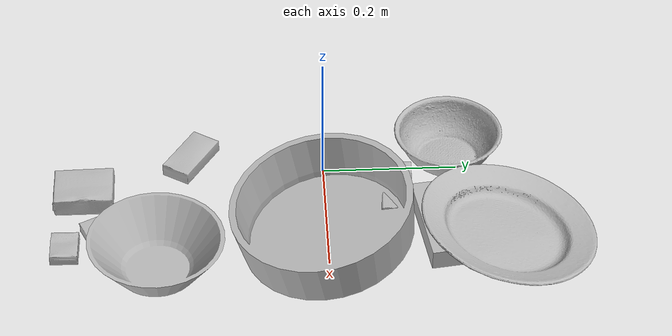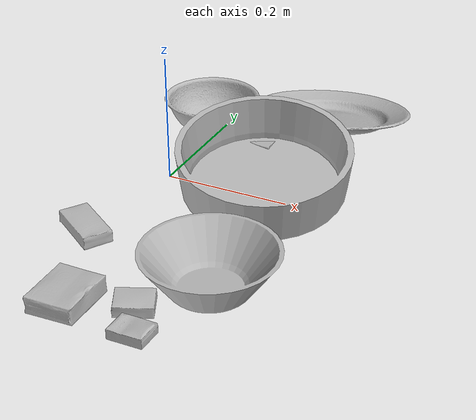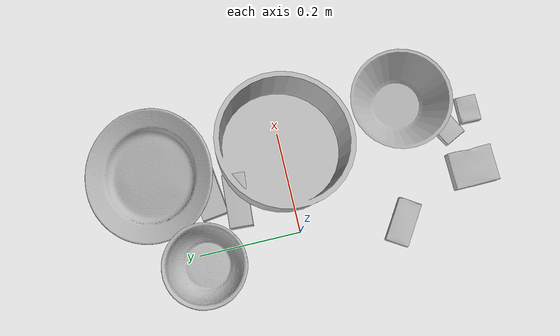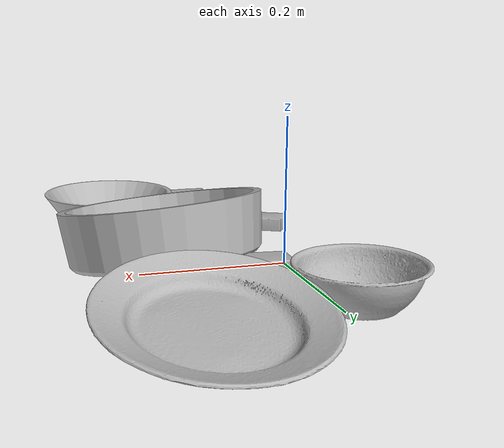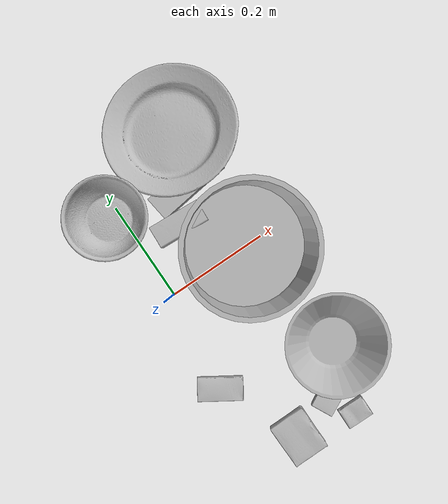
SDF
<sdf version="1.4">
  <world name="default">
    <light name="light1" type="point">
      <pose>0 0 1 0 0 0</pose>
      <diffuse>3 3 3 1</diffuse>
      <specular>3 3 3 1</specular>
    </light>
    <light name="light2" type="point">
      <pose>0 0.5 2 0 0 0</pose>
      <diffuse>1 1 1 1</diffuse>
      <specular>1 1 1 1</specular>
    </light>
    <light name="light3" type="point">
      <pose>0 0.5 2 0 0 0</pose>
      <diffuse>3 3 3 1</diffuse>
      <specular>3 3 3 1</specular>
    </light>
    <scene>
      <ambient>0.7 0.7 0.7</ambient>
    </scene>
    <model name="box1">
      <link name="link_box1">
        <collision name="default">
          <geometry>
            <mesh>
              <uri>model://jenga/collision_meshes/collision.obj</uri>
              <scale>1.0 1.0 1.0</scale>
            </mesh>
          </geometry>
          <surface>
            <friction>
              <ode>
                <mu>0.5</mu>
                <mu2>0.5</mu2>
              </ode>
            </friction>
          <contact>
        <ode>
            <max_vel>0</max_vel>
            <min_depth>0.0001</min_depth>
            <kp>1e8</kp>
        </ode>
    </contact></surface>
        </collision>
        <visual name="default">
          <geometry>
            <mesh>
              <uri>model://jenga/visual_meshes/visual.dae</uri>
              <scale>1.0 1.0 1.0</scale>
            </mesh>
          </geometry>
        </visual>
        <inertial>
          <mass>0.24226053059101105</mass>
          <pose>-2.502855807051674e-07 -0.0001025000965455547 -4.092339804628864e-05 0.0 -7.34215461761844e-07 0.0</pose>
          <inertia>
            <ixx>6.703936e-05</ixx>
            <iyy>0.0004542569</iyy>
            <izz>0.00048495785</izz>
            <ixy>0</ixy>
            <ixz>0</ixz>
            <iyz>0</iyz>
          </inertia>
        </inertial>
      </link>
      <pose>0.13977506756782532 0.16134831309318542 0.01499998103827238 -1.5900684364967994e-07 -1.8336262935022346e-07 0.13187596357569406</pose>
    </model>
    <model name="box11">
      <link name="link_box11">
        <collision name="default">
          <geometry>
            <mesh>
              <uri>model://sugar_box/collision_meshes/collision.obj</uri>
              <scale>0.5 0.5 0.5</scale>
            </mesh>
          </geometry>
          <surface>
            <friction>
              <ode>
                <mu>0.5</mu>
                <mu2>0.5</mu2>
              </ode>
            </friction>
          <contact>
        <ode>
            <max_vel>0</max_vel>
            <min_depth>0.0001</min_depth>
            <kp>1e8</kp>
        </ode>
    </contact></surface>
        </collision>
        <visual name="default">
          <geometry>
            <mesh>
              <uri>model://sugar_box/visual_meshes/visual.dae</uri>
              <scale>0.5 0.5 0.5</scale>
            </mesh>
          </geometry>
        </visual>
        <inertial>
          <mass>0.06204606965184212</mass>
          <pose>0.0005171863595023751 1.9245549992774613e-05 -0.00018182402709499002 -0.0004046263588767038 0.0010506634057764815 0.0026153785560837986</pose>
          <inertia>
            <ixx>1.2924152e-05</ixx>
            <iyy>4.1773517e-05</iyy>
            <izz>5.0007893e-05</izz>
            <ixy>0</ixy>
            <ixz>0</ixz>
            <iyz>0</iyz>
          </inertia>
        </inertial>
      </link>
      <pose>-0.026681318879127502 -0.1975691020488739 0.011399305425584316 0.0007755251095430781 -0.023433289260363227 2.564435177986477</pose>
    </model>
    <model name="box2">
      <link name="link_box2">
        <collision name="default">
          <geometry>
            <mesh>
              <uri>model://gelatin_box/collision_meshes/collision.obj</uri>
              <scale>1.0 1.0 1.0</scale>
            </mesh>
          </geometry>
          <surface>
            <friction>
              <ode>
                <mu>0.5</mu>
                <mu2>0.5</mu2>
              </ode>
            </friction>
          <contact>
        <ode>
            <max_vel>0</max_vel>
            <min_depth>0.0001</min_depth>
            <kp>1e8</kp>
        </ode>
    </contact></surface>
        </collision>
        <visual name="default">
          <geometry>
            <mesh>
              <uri>model://gelatin_box/visual_meshes/visual.dae</uri>
              <scale>1.0 1.0 1.0</scale>
            </mesh>
          </geometry>
        </visual>
        <inertial>
          <mass>0.13706544041633606</mass>
          <pose>0.000431961816502735 0.00011156871187267825 -0.0003640321083366871 -0.0010503719975702072 -0.0047558196187974565 0.01644056506069309</pose>
          <inertia>
            <ixx>9.675702e-05</ixx>
            <iyy>6.911303e-05</iyy>
            <izz>0.00014728573</izz>
            <ixy>0</ixy>
            <ixz>0</ixz>
            <iyz>0</iyz>
          </inertia>
        </inertial>
      </link>
      <pose>0.045686185359954834 -0.3552705943584442 0.015168312005698681 0.005597092803846328 -0.007304179788195795 0.00029324332979810446</pose>
    </model>
    <model name="box21">
      <link name="link_box21">
        <collision name="default">
          <geometry>
            <mesh>
              <uri>model://pudding_box/collision_meshes/collision.obj</uri>
              <scale>0.5 0.5 0.5</scale>
            </mesh>
          </geometry>
          <surface>
            <friction>
              <ode>
                <mu>0.5</mu>
                <mu2>0.5</mu2>
              </ode>
            </friction>
          <contact>
        <ode>
            <max_vel>0</max_vel>
            <min_depth>0.0001</min_depth>
            <kp>1e8</kp>
        </ode>
    </contact></surface>
        </collision>
        <visual name="default">
          <geometry>
            <mesh>
              <uri>model://pudding_box/visual_meshes/visual.dae</uri>
              <scale>0.5 0.5 0.5</scale>
            </mesh>
          </geometry>
        </visual>
        <inertial>
          <mass>0.041178666055202484</mass>
          <pose>0.00024474109522998333 0.00040339428232982755 -0.00025944141088984907 0.005213101335872514 -0.006603799630434185 0.020079819569992066</pose>
          <inertia>
            <ixx>1.163759e-05</ixx>
            <iyy>7.8298535e-06</iyy>
            <izz>1.7185945e-05</izz>
            <ixy>0</ixy>
            <ixz>0</ixz>
            <iyz>0</iyz>
          </inertia>
        </inertial>
      </link>
      <pose>0.13330119848251343 -0.32762616872787476 0.009862901642918587 0.02234750412947816 -0.011392185745284856 2.0230709119189476</pose>
    </model>
    <model name="box3">
      <link name="link_box3">
        <collision name="default">
          <geometry>
            <mesh>
              <uri>model://cracker_box/collision_meshes/collision.obj</uri>
              <scale>0.25 0.25 0.25</scale>
            </mesh>
          </geometry>
          <surface>
            <friction>
              <ode>
                <mu>0.5</mu>
                <mu2>0.5</mu2>
              </ode>
            </friction>
          <contact>
        <ode>
            <max_vel>0</max_vel>
            <min_depth>0.0001</min_depth>
            <kp>1e8</kp>
        </ode>
    </contact></surface>
        </collision>
        <visual name="default">
          <geometry>
            <mesh>
              <uri>model://cracker_box/visual_meshes/visual.dae</uri>
              <scale>0.25 0.25 0.25</scale>
            </mesh>
          </geometry>
        </visual>
        <inertial>
          <mass>0.02017100155353546</mass>
          <pose>0.00023660367878619581 6.358561222441494e-05 -0.00042573839891701937 -0.0003162077973682912 -0.011106487737506417 0.0025467945369474112</pose>
          <inertia>
            <ixx>3.2066264e-06</ixx>
            <iyy>5.2947703e-06</iyy>
            <izz>7.556123e-06</izz>
            <ixy>0</ixy>
            <ixz>0</ixz>
            <iyz>0</iyz>
          </inertia>
        </inertial>
      </link>
      <pose>0.16064149141311646 -0.37910446524620056 0.009096034802496433 -0.014050401315843977 -0.005016407431915172 -0.01177071116203283</pose>
    </model>
    <model name="box31">
      <link name="link_box31">
        <collision name="default">
          <geometry>
            <mesh>
              <uri>model://wood_block/collision_meshes/collision.obj</uri>
              <scale>0.5 0.5 0.5</scale>
            </mesh>
          </geometry>
          <surface>
            <friction>
              <ode>
                <mu>0.5</mu>
                <mu2>0.5</mu2>
              </ode>
            </friction>
          <contact>
        <ode>
            <max_vel>0</max_vel>
            <min_depth>0.0001</min_depth>
            <kp>1e8</kp>
        </ode>
    </contact></surface>
        </collision>
        <visual name="default">
          <geometry>
            <mesh>
              <uri>model://wood_block/visual_meshes/visual.dae</uri>
              <scale>0.5 0.5 0.5</scale>
            </mesh>
          </geometry>
        </visual>
        <inertial>
          <mass>0.1962708830833435</mass>
          <pose>-2.9066577553749084e-06 -0.000285404734313488 0.00013204291462898254 -0.05220969561834339 -0.0051926963065425085 -0.006861379449261536</pose>
          <inertia>
            <ixx>6.566003e-05</ixx>
            <iyy>0.00020742005</iyy>
            <izz>0.00020664421</izz>
            <ixy>0</ixy>
            <ixz>0</ixz>
            <iyz>0</iyz>
          </inertia>
        </inertial>
      </link>
      <pose>0.08548508584499359 0.1040629968047142 0.022602923214435577 -0.007962238708945853 0.00412595822729296 -0.05686629888089336</pose>
    </model>
    <model name="plate1">
      <link name="link_plate1">
        <collision name="default">
          <geometry>
            <mesh>
              <uri>model://plate/collision_meshes/collision.obj</uri>
              <scale>1.0 1.0 1.0</scale>
            </mesh>
          </geometry>
          <surface>
            <friction>
              <ode>
                <mu>0.5</mu>
                <mu2>0.5</mu2>
              </ode>
            </friction>
          <contact>
        <ode>
            <max_vel>0</max_vel>
            <min_depth>0.0001</min_depth>
            <kp>1e8</kp>
        </ode>
    </contact></surface>
        </collision>
        <visual name="default">
          <geometry>
            <mesh>
              <uri>model://plate/visual_meshes/visual.dae</uri>
              <scale>1.0 1.0 1.0</scale>
            </mesh>
          </geometry>
        </visual>
        <inertial>
          <mass>0.17345036566257477</mass>
          <pose>-0.0006044625188224018 0.00027825802681036294 -0.0010561991948634386 0.0022187574415082918 -0.0032254973035065115 0.4526175972404713</pose>
          <inertia>
            <ixx>0.00081140426</ixx>
            <iyy>0.0008036436</iyy>
            <izz>0.0015869853</izz>
            <ixy>0</ixy>
            <ixz>0</ixz>
            <iyz>0</iyz>
          </inertia>
        </inertial>
      </link>
      <pose>0.16991026699543 0.2581152617931366 0.02974627912044525 0.01915058661649864 0.21397684451733312 1.8653917847403179</pose>
    </model>
    <model name="bowl1">
      <link name="link_bowl1">
        <collision name="default">
          <geometry>
            <mesh>
              <uri>model://bowl/collision_meshes/collision.obj</uri>
              <scale>1.0 1.0 1.0</scale>
            </mesh>
          </geometry>
          <surface>
            <friction>
              <ode>
                <mu>0.5</mu>
                <mu2>0.5</mu2>
              </ode>
            </friction>
          <contact>
        <ode>
            <max_vel>0</max_vel>
            <min_depth>0.0001</min_depth>
            <kp>1e8</kp>
        </ode>
    </contact></surface>
        </collision>
        <visual name="default">
          <geometry>
            <mesh>
              <uri>model://bowl/visual_meshes/visual.dae</uri>
              <scale>1.0 1.0 1.0</scale>
            </mesh>
          </geometry>
        </visual>
        <inertial>
          <mass>0.11633910983800888</mass>
          <pose>0.00020445004338398576 -0.0010302083101123571 -0.0008042659610509872 -0.01576420252076368 0.01454664289610389 0.7140315541596068</pose>
          <inertia>
            <ixx>0.0002672402</ixx>
            <iyy>0.000261269</iyy>
            <izz>0.00044958986</izz>
            <ixy>0</ixy>
            <ixz>0</ixz>
            <iyz>0</iyz>
          </inertia>
        </inertial>
      </link>
      <pose>-0.02170318178832531 0.18877051770687103 0.027966467663645744 0.0038408208516994384 -0.002043821379505789 -0.9955796444587764</pose>
    </model>
    <model name="plate2">
      <link name="link_plate2">
        <collision name="default">
          <geometry>
            <mesh>
              <uri>model://pan_tefal/collision_meshes/collision.obj</uri>
              <scale>1.0 1.0 1.0</scale>
            </mesh>
          </geometry>
          <surface>
            <friction>
              <ode>
                <mu>0.5</mu>
                <mu2>0.5</mu2>
              </ode>
            </friction>
          <contact>
        <ode>
            <max_vel>0</max_vel>
            <min_depth>0.0001</min_depth>
            <kp>1e8</kp>
        </ode>
    </contact></surface>
        </collision>
        <visual name="default">
          <geometry>
            <mesh>
              <uri>model://pan_tefal/visual_meshes/visual.dae</uri>
              <scale>1.0 1.0 1.0</scale>
            </mesh>
          </geometry>
        </visual>
        <inertial>
          <mass>0.6251956820487976</mass>
          <pose>-0.00018002417345996946 3.279016891610809e-05 -0.00851493515074253 0.0008190253681579672 -0.00033013925853852665 -0.331857454583129</pose>
          <inertia>
            <ixx>0.004315697</ixx>
            <iyy>0.00434352</iyy>
            <izz>0.007944365</izz>
            <ixy>0</ixy>
            <ixz>0</ixz>
            <iyz>0</iyz>
          </inertia>
        </inertial>
      </link>
      <pose>0.16706958413124084 -0.005053312983363867 0.05793086439371109 0.13376241943813127 0.12231064843461387 -0.29040611408547923</pose>
    </model>
    <model name="bowl2">
      <link name="link_bowl2">
        <collision name="default">
          <geometry>
            <mesh>
              <uri>model://bowl_a/collision_meshes/collision.obj</uri>
              <scale>1.0 1.0 1.0</scale>
            </mesh>
          </geometry>
          <surface>
            <friction>
              <ode>
                <mu>0.5</mu>
                <mu2>0.5</mu2>
              </ode>
            </friction>
          <contact>
        <ode>
            <max_vel>0</max_vel>
            <min_depth>0.0001</min_depth>
            <kp>1e8</kp>
        </ode>
    </contact></surface>
        </collision>
        <visual name="default">
          <geometry>
            <mesh>
              <uri>model://bowl_a/visual_meshes/visual.dae</uri>
              <scale>1.0 1.0 1.0</scale>
            </mesh>
          </geometry>
        </visual>
        <inertial>
          <mass>0.3434441387653351</mass>
          <pose>0.0002786742115858942 4.731103399535641e-05 -0.0013765294570475817 -0.000980532155977885 -0.0010938290454026757 -0.191241060811112</pose>
          <inertia>
            <ixx>0.0009778013</ixx>
            <iyy>0.0009838042</iyy>
            <izz>0.0017390571</izz>
            <ixy>0</ixy>
            <ixz>0</ixz>
            <iyz>0</iyz>
          </inertia>
        </inertial>
      </link>
      <pose>0.20154015719890594 -0.24521532654762268 0.030382439494132996 -1.0790095980562677e-05 1.1292739123597978e-05 -3.109453400612041</pose>
    </model>
  <physics type="ode">
      <max_contacts>50</max_contacts>
      <ode>
        <solver>
          <type>quick</type>
          <iters>75</iters>
        </solver>
        <constraints>
          <contact_max_correcting_vel>0</contact_max_correcting_vel>
          <contact_surface_layer>0</contact_surface_layer>
        </constraints>
      </ode>
    </physics></world>
</sdf>
